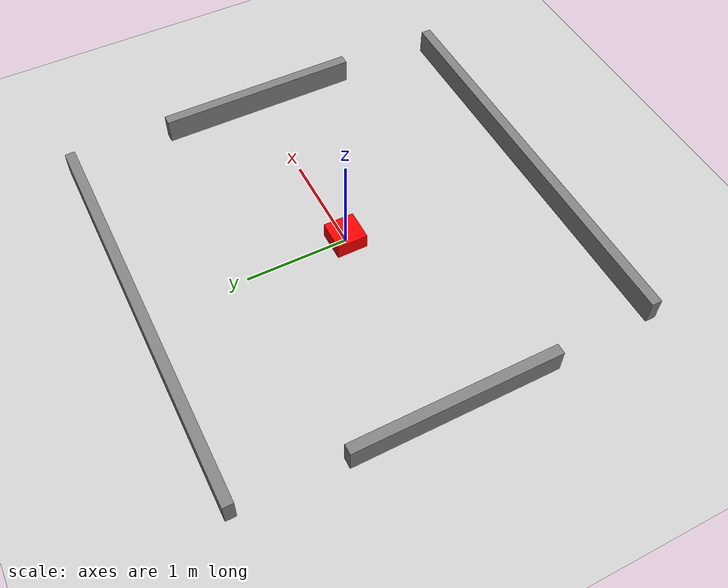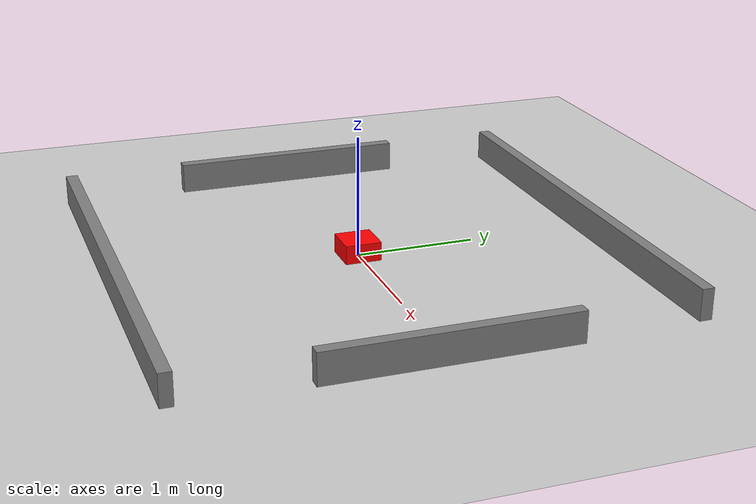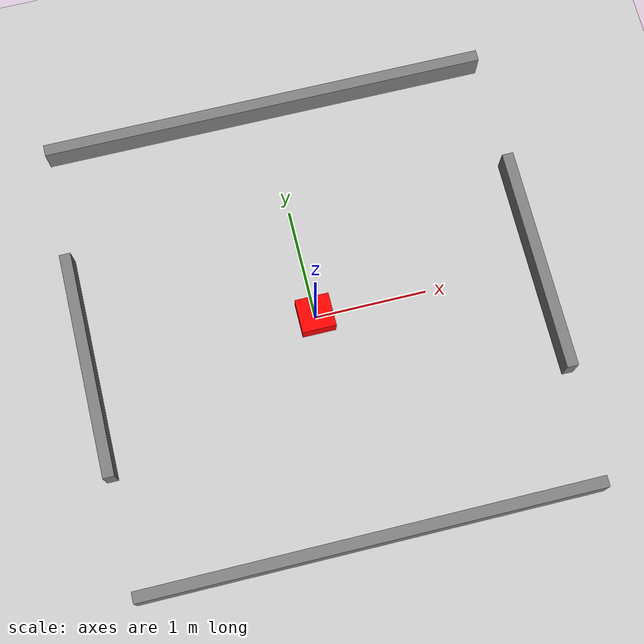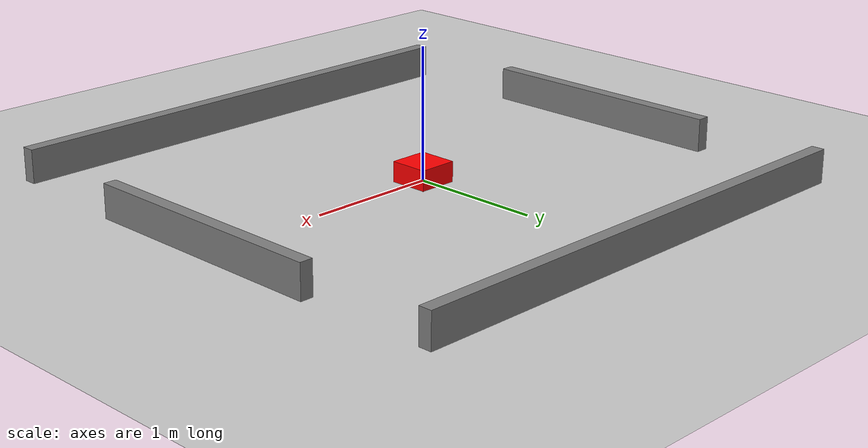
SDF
<?xml version="1.0"?>
<sdf version="1.9">
  <world name="sweepi_world">
    <physics type="ode">
      <real_time_update_rate>1000.0</real_time_update_rate>
      <max_step_size>0.001</max_step_size>
      <real_time_factor>1</real_time_factor>
      <ode>
        <solver>
          <type>quick</type>
          <iters>150</iters>
        </solver>
        <constraints>
          <cfm>0.00001</cfm>
          <erp>0.2</erp>
        </constraints>
      </ode>
    </physics>

    <plugin
      filename="gz-sim-physics-system"
      name="gz::sim::systems::Physics">
    </plugin>
    <plugin
      filename="gz-sim-user-commands-system"
      name="gz::sim::systems::UserCommands">
    </plugin>
    <plugin
      filename="gz-sim-scene-broadcaster-system"
      name="gz::sim::systems::SceneBroadcaster">
    </plugin>
    <plugin
      filename="gz-sim-sensors-system"
      name="gz::sim::systems::Sensors">
      <render_engine>ogre2</render_engine>
    </plugin>
    <plugin
      filename="gz-sim-imu-system"
      name="gz::sim::systems::Imu">
    </plugin>

    <include>
      <uri>https://fuel.gazebosim.org/1.0/OpenRobotics/models/Ground Plane</uri>
    </include>

    <include>
      <uri>https://fuel.gazebosim.org/1.0/OpenRobotics/models/Sun</uri>
    </include>

    <!-- Walls -->
    <model name="wall_1">
      <static>true</static>
      <pose>-2 0 0 0 0 0</pose>
      <link name="link">
        <visual name="visual">
          <geometry>
            <box>
              <size>0.1 2 0.5</size>
            </box>
          </geometry>
          <material>
            <ambient>0.5 0.5 0.5 1</ambient>
            <diffuse>0.5 0.5 0.5 1</diffuse>
          </material>
        </visual>
        <collision name="collision">
          <geometry>
            <box>
              <size>0.1 2 0.5</size>
            </box>
          </geometry>
        </collision>
      </link>
    </model>

    <model name="wall_2">
      <static>true</static>
      <pose>2 0 0 0 0 0</pose>
      <link name="link">
        <visual name="visual">
          <geometry>
            <box>
              <size>0.1 2 0.5</size>
            </box>
          </geometry>
          <material>
            <ambient>0.5 0.5 0.5 1</ambient>
            <diffuse>0.5 0.5 0.5 1</diffuse>
          </material>
        </visual>
        <collision name="collision">
          <geometry>
            <box>
              <size>0.1 2 0.5</size>
            </box>
          </geometry>
        </collision>
      </link>
    </model>

    <model name="wall_3">
      <static>true</static>
      <pose>0 -2 0 0 0 0</pose>
      <link name="link">
        <visual name="visual">
          <geometry>
            <box>
              <size>4 0.1 0.5</size>
            </box>
          </geometry>
          <material>
            <ambient>0.5 0.5 0.5 1</ambient>
            <diffuse>0.5 0.5 0.5 1</diffuse>
          </material>
        </visual>
        <collision name="collision">
          <geometry>
            <box>
              <size>4 0.1 0.5</size>
            </box>
          </geometry>
        </collision>
      </link>
    </model>

    <model name="wall_4">
      <static>true</static>
      <pose>0 2 0 0 0 0</pose>
      <link name="link">
        <visual name="visual">
          <geometry>
            <box>
              <size>4 0.1 0.5</size>
            </box>
          </geometry>
          <material>
            <ambient>0.5 0.5 0.5 1</ambient>
            <diffuse>0.5 0.5 0.5 1</diffuse>
          </material>
        </visual>
        <collision name="collision">
          <geometry>
            <box>
              <size>4 0.1 0.5</size>
            </box>
          </geometry>
        </collision>
      </link>
    </model>

    <!-- Obstacle -->
    <model name="obstacle_1">
      <static>true</static>
      <pose>0 0 0 0 0 0</pose>
      <link name="link">
        <visual name="visual">
          <geometry>
            <box>
              <size>0.3 0.3 0.3</size>
            </box>
          </geometry>
          <material>
            <ambient>1 0 0 1</ambient>
            <diffuse>1 0 0 1</diffuse>
          </material>
        </visual>
        <collision name="collision">
          <geometry>
            <box>
              <size>0.3 0.3 0.3</size>
            </box>
          </geometry>
        </collision>
      </link>
    </model>

  </world>
</sdf>
